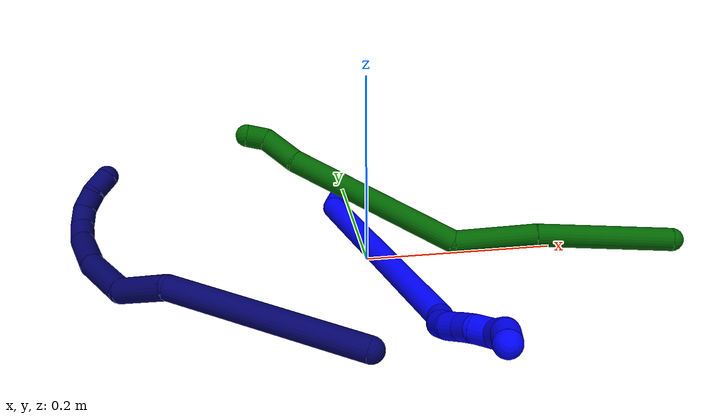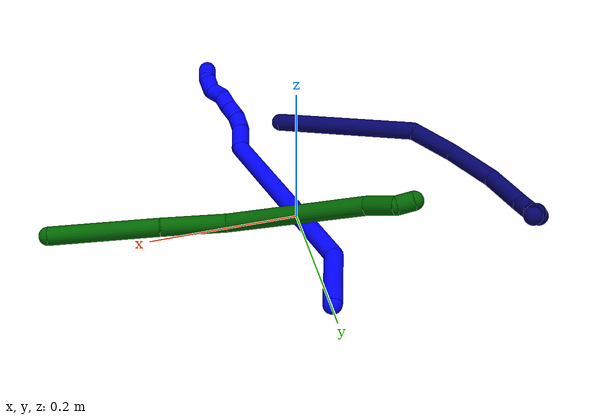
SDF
<sdf version="1.7">
 <world name="default">
  <model name="photoneo_s_sensor">
   <static>1</static>
   <pose>0 0 2 1.57079 1.57079 3.14159</pose>
   <link name="link">
    <inertial><mass>0.1</mass></inertial>
    <sensor name="sensor" type="depth">
     <update_rate>30</update_rate>
     <camera>
      <horizontal_fov>1.22</horizontal_fov>
      <image><width>1920</width><height>1200</height><format>B8G8R8</format></image>
      <clip><near>0.1</near><far>4</far></clip>
      <depth_camera><output>points</output></depth_camera>
     </camera>
     <plugin name="camera_plugin" filename="libgazebo_ros_depth_camera.so">
      <baseline>0.2</baseline>
      <alwaysOn>1</alwaysOn>
      <updateRate>0.0</updateRate>
      <cameraName>camera_ir</cameraName>
      <imageTopicName>/camera/color/image_raw</imageTopicName>
      <cameraInfoTopicName>/camera/color/camera_info</cameraInfoTopicName>
      <depthImageTopicName>/camera/depth/image_raw</depthImageTopicName>
      <depthImageCameraInfoTopicName>/camera/depth/camera_info</depthImageCameraInfoTopicName>
      <pointCloudTopicName>/camera/depth/points</pointCloudTopicName>
      <frameName>fr_optical</frameName>
      <pointCloudCutoff>0.1</pointCloudCutoff>
      <pointCloudCutoffMax>2.0</pointCloudCutoffMax>
      <distortionK1>0</distortionK1>
      <distortionK2>0</distortionK2>
      <distortionK3>0</distortionK3>
      <distortionT1>0</distortionT1>
      <distortionT2>0</distortionT2>
      <CxPrime>0</CxPrime>
      <Cx>0</Cx>
      <Cy>0</Cy>
      <focalLength>0</focalLength>
      <hackBaseline>0</hackBaseline>
     </plugin>
    </sensor>
   </link>
  </model>
  <model name="bin">
   <static>1</static>
   <link name="bottom">
    <collision name="collision-bottom">
     <pose>0 0 -0.01 0 -0 0</pose>
     <geometry><box><size>0.8 0.6 0.02</size></box></geometry>
     <surface>
      <friction><ode><mu>100</mu><mu2>100</mu2></ode></friction>
      <contact><collide_bitmask>65535</collide_bitmask></contact>
     </surface>
    </collision>
   </link>
   <link name="west_wall">
    <collision name="collision-west_wall">
     <pose>-0.41 0 0.1 0 -0 0</pose>
     <geometry><box><size>0.02 0.6 0.2</size></box></geometry>
     <surface>
      <friction><ode><mu>100</mu><mu2>100</mu2></ode></friction>
      <contact><collide_bitmask>65535</collide_bitmask></contact>
     </surface>
    </collision>
   </link>
   <link name="east_wall">
    <collision name="collision-east_wall">
     <pose>0.41 0 0.1 0 -0 0</pose>
     <geometry><box><size>0.02 0.6 0.2</size></box></geometry>
     <surface>
      <friction><ode><mu>100</mu><mu2>100</mu2></ode></friction>
      <contact><collide_bitmask>65535</collide_bitmask></contact>
     </surface>
    </collision>
   </link>
   <link name="south_wall">
    <collision name="collision-south_wall">
     <pose>0 -0.31 0.1 0 -0 0</pose>
     <geometry><box><size>0.8 0.02 0.2</size></box></geometry>
     <surface>
      <friction><ode><mu>100</mu><mu2>100</mu2></ode></friction>
      <contact><collide_bitmask>65535</collide_bitmask></contact>
     </surface>
    </collision>
   </link>
   <link name="north_wall">
    <collision name="collision-north_wall">
     <pose>0 0.31 0.1 0 -0 0</pose>
     <geometry><box><size>0.8 0.02 0.2</size></box></geometry>
     <surface>
      <friction><ode><mu>100</mu><mu2>100</mu2></ode></friction>
      <contact><collide_bitmask>65535</collide_bitmask></contact>
     </surface>
    </collision>
   </link>
  </model>
  <model name="1">
   <static>0</static>
   <link name="1">
    <collision name="collision-cylinder-e_1_1_4">
     <pose>-0.011676 -0.016722 0.034514 0.451163 -0.295531 -0.068292</pose>
     <geometry><cylinder><radius>0.0125</radius><length>0.080178</length></cylinder></geometry>
     <surface>
      <friction><ode><mu>1.16</mu><mu2>1.16</mu2><slip1>0</slip1><slip2>0</slip2></ode></friction>
      <contact><ode><kp>1e+06</kp><kd>1</kd><max_vel>0</max_vel><min_depth>0.001</min_depth></ode></contact>
     </surface>
    </collision>
    <visual name="visual-cylinder-e_1_1_4">
     <pose>-0.011676 -0.016722 0.034514 0.451163 -0.295531 -0.068292</pose>
     <geometry><cylinder><radius>0.0125</radius><length>0.080178</length></cylinder></geometry>
     <material><ambient>0 0 1 1</ambient></material>
    </visual>
    <collision name="collision-cylinder-e_2_4_5">
     <pose>0.001085 -0.121821 0.164183 0.748489 0.185995 0.073229</pose>
     <geometry><cylinder><radius>0.0125</radius><length>0.26429</length></cylinder></geometry>
     <surface>
      <friction><ode><mu>1.16</mu><mu2>1.16</mu2><slip1>0</slip1><slip2>0</slip2></ode></friction>
      <contact><ode><kp>1e+06</kp><kd>1</kd><max_vel>0</max_vel><min_depth>0.001</min_depth></ode></contact>
     </surface>
    </collision>
    <visual name="visual-cylinder-e_2_4_5">
     <pose>0.001085 -0.121821 0.164183 0.748489 0.185995 0.073229</pose>
     <geometry><cylinder><radius>0.0125</radius><length>0.26429</length></cylinder></geometry>
     <material><ambient>0 0 1 1</ambient></material>
    </visual>
    <collision name="collision-cylinder-e_3_5_6">
     <pose>0.023386 -0.213946 0.275475 0.228146 -0.1282 -0.014708</pose>
     <geometry><cylinder><radius>0.0125</radius><length>0.033408</length></cylinder></geometry>
     <surface>
      <friction><ode><mu>1.16</mu><mu2>1.16</mu2><slip1>0</slip1><slip2>0</slip2></ode></friction>
      <contact><ode><kp>1e+06</kp><kd>1</kd><max_vel>0</max_vel><min_depth>0.001</min_depth></ode></contact>
     </surface>
    </collision>
    <visual name="visual-cylinder-e_3_5_6">
     <pose>0.023386 -0.213946 0.275475 0.228146 -0.1282 -0.014708</pose>
     <geometry><cylinder><radius>0.0125</radius><length>0.033408</length></cylinder></geometry>
     <material><ambient>0 0 1 1</ambient></material>
    </visual>
    <collision name="collision-cylinder-e_4_6_7">
     <pose>0.023343 -0.220634 0.301858 0.279517 0.193792 0.027346</pose>
     <geometry><cylinder><radius>0.0125</radius><length>0.021724</length></cylinder></geometry>
     <surface>
      <friction><ode><mu>1.16</mu><mu2>1.16</mu2><slip1>0</slip1><slip2>0</slip2></ode></friction>
      <contact><ode><kp>1e+06</kp><kd>1</kd><max_vel>0</max_vel><min_depth>0.001</min_depth></ode></contact>
     </surface>
    </collision>
    <visual name="visual-cylinder-e_4_6_7">
     <pose>0.023343 -0.220634 0.301858 0.279517 0.193792 0.027346</pose>
     <geometry><cylinder><radius>0.0125</radius><length>0.021724</length></cylinder></geometry>
     <material><ambient>0 0 1 1</ambient></material>
    </visual>
    <collision name="collision-cylinder-e_5_7_8">
     <pose>0.030269 -0.226941 0.320324 0.388608 0.498338 0.100064</pose>
     <geometry><cylinder><radius>0.0125</radius><length>0.020229</length></cylinder></geometry>
     <surface>
      <friction><ode><mu>1.16</mu><mu2>1.16</mu2><slip1>0</slip1><slip2>0</slip2></ode></friction>
      <contact><ode><kp>1e+06</kp><kd>1</kd><max_vel>0</max_vel><min_depth>0.001</min_depth></ode></contact>
     </surface>
    </collision>
    <visual name="visual-cylinder-e_5_7_8">
     <pose>0.030269 -0.226941 0.320324 0.388608 0.498338 0.100064</pose>
     <geometry><cylinder><radius>0.0125</radius><length>0.020229</length></cylinder></geometry>
     <material><ambient>0 0 1 1</ambient></material>
    </visual>
    <collision name="collision-cylinder-e_6_8_9">
     <pose>0.038884 -0.233422 0.337299 0.341865 0.386482 0.067531</pose>
     <geometry><cylinder><radius>0.0125</radius><length>0.020061</length></cylinder></geometry>
     <surface>
      <friction><ode><mu>1.16</mu><mu2>1.16</mu2><slip1>0</slip1><slip2>0</slip2></ode></friction>
      <contact><ode><kp>1e+06</kp><kd>1</kd><max_vel>0</max_vel><min_depth>0.001</min_depth></ode></contact>
     </surface>
    </collision>
    <visual name="visual-cylinder-e_6_8_9">
     <pose>0.038884 -0.233422 0.337299 0.341865 0.386482 0.067531</pose>
     <geometry><cylinder><radius>0.0125</radius><length>0.020061</length></cylinder></geometry>
     <material><ambient>0 0 1 1</ambient></material>
    </visual>
    <collision name="collision-cylinder-e_7_9_10">
     <pose>0.048754 -0.242032 0.351811 0.761997 0.652996 0.269634</pose>
     <geometry><cylinder><radius>0.0125</radius><length>0.020044</length></cylinder></geometry>
     <surface>
      <friction><ode><mu>1.16</mu><mu2>1.16</mu2><slip1>0</slip1><slip2>0</slip2></ode></friction>
      <contact><ode><kp>1e+06</kp><kd>1</kd><max_vel>0</max_vel><min_depth>0.001</min_depth></ode></contact>
     </surface>
    </collision>
    <visual name="visual-cylinder-e_7_9_10">
     <pose>0.048754 -0.242032 0.351811 0.761997 0.652996 0.269634</pose>
     <geometry><cylinder><radius>0.0125</radius><length>0.020044</length></cylinder></geometry>
     <material><ambient>0 0 1 1</ambient></material>
    </visual>
    <collision name="collision-cylinder-e_8_10_11">
     <pose>0.057897 -0.248797 0.36704 0.133351 0.309435 0.020828</pose>
     <geometry><cylinder><radius>0.0125</radius><length>0.020063</length></cylinder></geometry>
     <surface>
      <friction><ode><mu>1.16</mu><mu2>1.16</mu2><slip1>0</slip1><slip2>0</slip2></ode></friction>
      <contact><ode><kp>1e+06</kp><kd>1</kd><max_vel>0</max_vel><min_depth>0.001</min_depth></ode></contact>
     </surface>
    </collision>
    <visual name="visual-cylinder-e_8_10_11">
     <pose>0.057897 -0.248797 0.36704 0.133351 0.309435 0.020828</pose>
     <geometry><cylinder><radius>0.0125</radius><length>0.020063</length></cylinder></geometry>
     <material><ambient>0 0 1 1</ambient></material>
    </visual>
    <collision name="collision-cylinder-e_9_11_2">
     <pose>0.058992 -0.254464 0.385278 0.464806 -0.197311 -0.046843</pose>
     <geometry><cylinder><radius>0.0125</radius><length>0.020003</length></cylinder></geometry>
     <surface>
      <friction><ode><mu>1.16</mu><mu2>1.16</mu2><slip1>0</slip1><slip2>0</slip2></ode></friction>
      <contact><ode><kp>1e+06</kp><kd>1</kd><max_vel>0</max_vel><min_depth>0.001</min_depth></ode></contact>
     </surface>
    </collision>
    <visual name="visual-cylinder-e_9_11_2">
     <pose>0.058992 -0.254464 0.385278 0.464806 -0.197311 -0.046843</pose>
     <geometry><cylinder><radius>0.0125</radius><length>0.020003</length></cylinder></geometry>
     <material><ambient>0 0 1 1</ambient></material>
    </visual>
    <collision name="collision-sphere-2">
     <pose>0.057031 -0.25886 0.394045 0 -0 0</pose>
     <geometry><sphere><radius>0.0125</radius></sphere></geometry>
     <surface>
      <friction><ode><mu>1.16</mu><mu2>1.16</mu2><slip1>0</slip1><slip2>0</slip2></ode></friction>
      <contact><ode><kp>1e+06</kp><kd>1</kd><max_vel>0</max_vel><min_depth>0.001</min_depth></ode></contact>
     </surface>
    </collision>
    <visual name="visual-sphere-2">
     <pose>0.057031 -0.25886 0.394045 0 -0 0</pose>
     <geometry><sphere><radius>0.0125</radius></sphere></geometry>
     <material><ambient>0 0 1 1</ambient></material>
    </visual>
    <collision name="collision-sphere-11">
     <pose>0.060952 -0.250068 0.376511 0 -0 0</pose>
     <geometry><sphere><radius>0.0125</radius></sphere></geometry>
     <surface>
      <friction><ode><mu>1.16</mu><mu2>1.16</mu2><slip1>0</slip1><slip2>0</slip2></ode></friction>
      <contact><ode><kp>1e+06</kp><kd>1</kd><max_vel>0</max_vel><min_depth>0.001</min_depth></ode></contact>
     </surface>
    </collision>
    <visual name="visual-sphere-11">
     <pose>0.060952 -0.250068 0.376511 0 -0 0</pose>
     <geometry><sphere><radius>0.0125</radius></sphere></geometry>
     <material><ambient>0 0 1 1</ambient></material>
    </visual>
    <collision name="collision-sphere-10">
     <pose>0.054843 -0.247527 0.35757 0 -0 0</pose>
     <geometry><sphere><radius>0.0125</radius></sphere></geometry>
     <surface>
      <friction><ode><mu>1.16</mu><mu2>1.16</mu2><slip1>0</slip1><slip2>0</slip2></ode></friction>
      <contact><ode><kp>1e+06</kp><kd>1</kd><max_vel>0</max_vel><min_depth>0.001</min_depth></ode></contact>
     </surface>
    </collision>
    <visual name="visual-sphere-10">
     <pose>0.054843 -0.247527 0.35757 0 -0 0</pose>
     <geometry><sphere><radius>0.0125</radius></sphere></geometry>
     <material><ambient>0 0 1 1</ambient></material>
    </visual>
    <collision name="collision-sphere-9">
     <pose>0.042665 -0.236536 0.346052 0 -0 0</pose>
     <geometry><sphere><radius>0.0125</radius></sphere></geometry>
     <surface>
      <friction><ode><mu>1.16</mu><mu2>1.16</mu2><slip1>0</slip1><slip2>0</slip2></ode></friction>
      <contact><ode><kp>1e+06</kp><kd>1</kd><max_vel>0</max_vel><min_depth>0.001</min_depth></ode></contact>
     </surface>
    </collision>
    <visual name="visual-sphere-9">
     <pose>0.042665 -0.236536 0.346052 0 -0 0</pose>
     <geometry><sphere><radius>0.0125</radius></sphere></geometry>
     <material><ambient>0 0 1 1</ambient></material>
    </visual>
    <collision name="collision-sphere-4">
     <pose>-0.023352 -0.033443 0.069028 0 -0 0</pose>
     <geometry><sphere><radius>0.0125</radius></sphere></geometry>
     <surface>
      <friction><ode><mu>1.16</mu><mu2>1.16</mu2><slip1>0</slip1><slip2>0</slip2></ode></friction>
      <contact><ode><kp>1e+06</kp><kd>1</kd><max_vel>0</max_vel><min_depth>0.001</min_depth></ode></contact>
     </surface>
    </collision>
    <visual name="visual-sphere-4">
     <pose>-0.023352 -0.033443 0.069028 0 -0 0</pose>
     <geometry><sphere><radius>0.0125</radius></sphere></geometry>
     <material><ambient>0 0 1 1</ambient></material>
    </visual>
    <collision name="collision-sphere-1">
     <geometry><sphere><radius>0.0125</radius></sphere></geometry>
     <surface>
      <friction><ode><mu>1.16</mu><mu2>1.16</mu2><slip1>0</slip1><slip2>0</slip2></ode></friction>
      <contact><ode><kp>1e+06</kp><kd>1</kd><max_vel>0</max_vel><min_depth>0.001</min_depth></ode></contact>
     </surface>
    </collision>
    <visual name="visual-sphere-1">
     <geometry><sphere><radius>0.0125</radius></sphere></geometry>
     <material><ambient>0 0 1 1</ambient></material>
    </visual>
    <collision name="collision-sphere-8">
     <pose>0.035103 -0.230307 0.328546 0 -0 0</pose>
     <geometry><sphere><radius>0.0125</radius></sphere></geometry>
     <surface>
      <friction><ode><mu>1.16</mu><mu2>1.16</mu2><slip1>0</slip1><slip2>0</slip2></ode></friction>
      <contact><ode><kp>1e+06</kp><kd>1</kd><max_vel>0</max_vel><min_depth>0.001</min_depth></ode></contact>
     </surface>
    </collision>
    <visual name="visual-sphere-8">
     <pose>0.035103 -0.230307 0.328546 0 -0 0</pose>
     <geometry><sphere><radius>0.0125</radius></sphere></geometry>
     <material><ambient>0 0 1 1</ambient></material>
    </visual>
    <collision name="collision-sphere-5">
     <pose>0.025522 -0.210199 0.259338 0 -0 0</pose>
     <geometry><sphere><radius>0.0125</radius></sphere></geometry>
     <surface>
      <friction><ode><mu>1.16</mu><mu2>1.16</mu2><slip1>0</slip1><slip2>0</slip2></ode></friction>
      <contact><ode><kp>1e+06</kp><kd>1</kd><max_vel>0</max_vel><min_depth>0.001</min_depth></ode></contact>
     </surface>
    </collision>
    <visual name="visual-sphere-5">
     <pose>0.025522 -0.210199 0.259338 0 -0 0</pose>
     <geometry><sphere><radius>0.0125</radius></sphere></geometry>
     <material><ambient>0 0 1 1</ambient></material>
    </visual>
    <collision name="collision-sphere-6">
     <pose>0.021251 -0.217693 0.291613 0 -0 0</pose>
     <geometry><sphere><radius>0.0125</radius></sphere></geometry>
     <surface>
      <friction><ode><mu>1.16</mu><mu2>1.16</mu2><slip1>0</slip1><slip2>0</slip2></ode></friction>
      <contact><ode><kp>1e+06</kp><kd>1</kd><max_vel>0</max_vel><min_depth>0.001</min_depth></ode></contact>
     </surface>
    </collision>
    <visual name="visual-sphere-6">
     <pose>0.021251 -0.217693 0.291613 0 -0 0</pose>
     <geometry><sphere><radius>0.0125</radius></sphere></geometry>
     <material><ambient>0 0 1 1</ambient></material>
    </visual>
    <collision name="collision-sphere-7">
     <pose>0.025434 -0.223574 0.312103 0 -0 0</pose>
     <geometry><sphere><radius>0.0125</radius></sphere></geometry>
     <surface>
      <friction><ode><mu>1.16</mu><mu2>1.16</mu2><slip1>0</slip1><slip2>0</slip2></ode></friction>
      <contact><ode><kp>1e+06</kp><kd>1</kd><max_vel>0</max_vel><min_depth>0.001</min_depth></ode></contact>
     </surface>
    </collision>
    <visual name="visual-sphere-7">
     <pose>0.025434 -0.223574 0.312103 0 -0 0</pose>
     <geometry><sphere><radius>0.0125</radius></sphere></geometry>
     <material><ambient>0 0 1 1</ambient></material>
    </visual>
    <inertial>
     <pose>0.0107 -0.139367 0.194577 0 -0 0</pose>
     <mass>0.5</mass>
     <inertia>
      <ixx>0.001688</ixx>
      <ixy>0</ixy>
      <ixz>0</ixz>
      <iyy>0.001289</iyy>
      <iyz>0</iyz>
      <izz>0.000815</izz>
     </inertia>
    </inertial>
   </link>
   <pose>0.001053 0.179313 0.012117 0.921515 -0.372205 0.048371</pose>
  </model>
  <model name="6">
   <static>0</static>
   <link name="6">
    <collision name="collision-cylinder-e_1_1_4">
     <pose>-0.070676 0.018493 0.004961 -1.30869 -1.30624 1.0615</pose>
     <geometry><cylinder><radius>0.0125</radius><length>0.146447</length></cylinder></geometry>
     <surface>
      <friction><ode><mu>1.16</mu><mu2>1.16</mu2><slip1>0</slip1><slip2>0</slip2></ode></friction>
      <contact><ode><kp>1e+06</kp><kd>1</kd><max_vel>0</max_vel><min_depth>0.001</min_depth></ode></contact>
     </surface>
    </collision>
    <visual name="visual-cylinder-e_1_1_4">
     <pose>-0.070676 0.018493 0.004961 -1.30869 -1.30624 1.0615</pose>
     <geometry><cylinder><radius>0.0125</radius><length>0.146447</length></cylinder></geometry>
     <material><ambient>0 0.392157 0.003922 1</ambient></material>
    </visual>
    <collision name="collision-cylinder-e_2_4_5">
     <pose>-0.184726 0.047511 0.007552 -1.7923 -1.32701 1.5479</pose>
     <geometry><cylinder><radius>0.0125</radius><length>0.089392</length></cylinder></geometry>
     <surface>
      <friction><ode><mu>1.16</mu><mu2>1.16</mu2><slip1>0</slip1><slip2>0</slip2></ode></friction>
      <contact><ode><kp>1e+06</kp><kd>1</kd><max_vel>0</max_vel><min_depth>0.001</min_depth></ode></contact>
     </surface>
    </collision>
    <visual name="visual-cylinder-e_2_4_5">
     <pose>-0.184726 0.047511 0.007552 -1.7923 -1.32701 1.5479</pose>
     <geometry><cylinder><radius>0.0125</radius><length>0.089392</length></cylinder></geometry>
     <material><ambient>0 0.392157 0.003922 1</ambient></material>
    </visual>
    <collision name="collision-cylinder-e_3_5_6">
     <pose>-0.308594 0.087944 0.05445 -0.545589 -0.949392 0.285583</pose>
     <geometry><cylinder><radius>0.0125</radius><length>0.198001</length></cylinder></geometry>
     <surface>
      <friction><ode><mu>1.16</mu><mu2>1.16</mu2><slip1>0</slip1><slip2>0</slip2></ode></friction>
      <contact><ode><kp>1e+06</kp><kd>1</kd><max_vel>0</max_vel><min_depth>0.001</min_depth></ode></contact>
     </surface>
    </collision>
    <visual name="visual-cylinder-e_3_5_6">
     <pose>-0.308594 0.087944 0.05445 -0.545589 -0.949392 0.285583</pose>
     <geometry><cylinder><radius>0.0125</radius><length>0.198001</length></cylinder></geometry>
     <material><ambient>0 0.392157 0.003922 1</ambient></material>
    </visual>
    <collision name="collision-cylinder-e_4_6_7">
     <pose>-0.403314 0.126991 0.117726 -0.578062 -0.704868 0.217864</pose>
     <geometry><cylinder><radius>0.0125</radius><length>0.043914</length></cylinder></geometry>
     <surface>
      <friction><ode><mu>1.16</mu><mu2>1.16</mu2><slip1>0</slip1><slip2>0</slip2></ode></friction>
      <contact><ode><kp>1e+06</kp><kd>1</kd><max_vel>0</max_vel><min_depth>0.001</min_depth></ode></contact>
     </surface>
    </collision>
    <visual name="visual-cylinder-e_4_6_7">
     <pose>-0.403314 0.126991 0.117726 -0.578062 -0.704868 0.217864</pose>
     <geometry><cylinder><radius>0.0125</radius><length>0.043914</length></cylinder></geometry>
     <material><ambient>0 0.392157 0.003922 1</ambient></material>
    </visual>
    <collision name="collision-cylinder-e_5_7_2">
     <pose>-0.428394 0.137213 0.133913 -0.461349 -1.35011 0.371669</pose>
     <geometry><cylinder><radius>0.0125</radius><length>0.022246</length></cylinder></geometry>
     <surface>
      <friction><ode><mu>1.16</mu><mu2>1.16</mu2><slip1>0</slip1><slip2>0</slip2></ode></friction>
      <contact><ode><kp>1e+06</kp><kd>1</kd><max_vel>0</max_vel><min_depth>0.001</min_depth></ode></contact>
     </surface>
    </collision>
    <visual name="visual-cylinder-e_5_7_2">
     <pose>-0.428394 0.137213 0.133913 -0.461349 -1.35011 0.371669</pose>
     <geometry><cylinder><radius>0.0125</radius><length>0.022246</length></cylinder></geometry>
     <material><ambient>0 0.392157 0.003922 1</ambient></material>
    </visual>
    <collision name="collision-sphere-2">
     <pose>-0.439248 0.138297 0.136094 0 -0 0</pose>
     <geometry><sphere><radius>0.0125</radius></sphere></geometry>
     <surface>
      <friction><ode><mu>1.16</mu><mu2>1.16</mu2><slip1>0</slip1><slip2>0</slip2></ode></friction>
      <contact><ode><kp>1e+06</kp><kd>1</kd><max_vel>0</max_vel><min_depth>0.001</min_depth></ode></contact>
     </surface>
    </collision>
    <visual name="visual-sphere-2">
     <pose>-0.439248 0.138297 0.136094 0 -0 0</pose>
     <geometry><sphere><radius>0.0125</radius></sphere></geometry>
     <material><ambient>0 0.392157 0.003922 1</ambient></material>
    </visual>
    <collision name="collision-sphere-7">
     <pose>-0.417541 0.136129 0.131733 0 -0 0</pose>
     <geometry><sphere><radius>0.0125</radius></sphere></geometry>
     <surface>
      <friction><ode><mu>1.16</mu><mu2>1.16</mu2><slip1>0</slip1><slip2>0</slip2></ode></friction>
      <contact><ode><kp>1e+06</kp><kd>1</kd><max_vel>0</max_vel><min_depth>0.001</min_depth></ode></contact>
     </surface>
    </collision>
    <visual name="visual-sphere-7">
     <pose>-0.417541 0.136129 0.131733 0 -0 0</pose>
     <geometry><sphere><radius>0.0125</radius></sphere></geometry>
     <material><ambient>0 0.392157 0.003922 1</ambient></material>
    </visual>
    <collision name="collision-sphere-6">
     <pose>-0.389088 0.117853 0.103719 0 -0 0</pose>
     <geometry><sphere><radius>0.0125</radius></sphere></geometry>
     <surface>
      <friction><ode><mu>1.16</mu><mu2>1.16</mu2><slip1>0</slip1><slip2>0</slip2></ode></friction>
      <contact><ode><kp>1e+06</kp><kd>1</kd><max_vel>0</max_vel><min_depth>0.001</min_depth></ode></contact>
     </surface>
    </collision>
    <visual name="visual-sphere-6">
     <pose>-0.389088 0.117853 0.103719 0 -0 0</pose>
     <geometry><sphere><radius>0.0125</radius></sphere></geometry>
     <material><ambient>0 0.392157 0.003922 1</ambient></material>
    </visual>
    <collision name="collision-sphere-5">
     <pose>-0.228101 0.058036 0.005182 0 -0 0</pose>
     <geometry><sphere><radius>0.0125</radius></sphere></geometry>
     <surface>
      <friction><ode><mu>1.16</mu><mu2>1.16</mu2><slip1>0</slip1><slip2>0</slip2></ode></friction>
      <contact><ode><kp>1e+06</kp><kd>1</kd><max_vel>0</max_vel><min_depth>0.001</min_depth></ode></contact>
     </surface>
    </collision>
    <visual name="visual-sphere-5">
     <pose>-0.228101 0.058036 0.005182 0 -0 0</pose>
     <geometry><sphere><radius>0.0125</radius></sphere></geometry>
     <material><ambient>0 0.392157 0.003922 1</ambient></material>
    </visual>
    <collision name="collision-sphere-1">
     <geometry><sphere><radius>0.0125</radius></sphere></geometry>
     <surface>
      <friction><ode><mu>1.16</mu><mu2>1.16</mu2><slip1>0</slip1><slip2>0</slip2></ode></friction>
      <contact><ode><kp>1e+06</kp><kd>1</kd><max_vel>0</max_vel><min_depth>0.001</min_depth></ode></contact>
     </surface>
    </collision>
    <visual name="visual-sphere-1">
     <geometry><sphere><radius>0.0125</radius></sphere></geometry>
     <material><ambient>0 0.392157 0.003922 1</ambient></material>
    </visual>
    <collision name="collision-sphere-4">
     <pose>-0.141352 0.036985 0.009922 0 -0 0</pose>
     <geometry><sphere><radius>0.0125</radius></sphere></geometry>
     <surface>
      <friction><ode><mu>1.16</mu><mu2>1.16</mu2><slip1>0</slip1><slip2>0</slip2></ode></friction>
      <contact><ode><kp>1e+06</kp><kd>1</kd><max_vel>0</max_vel><min_depth>0.001</min_depth></ode></contact>
     </surface>
    </collision>
    <visual name="visual-sphere-4">
     <pose>-0.141352 0.036985 0.009922 0 -0 0</pose>
     <geometry><sphere><radius>0.0125</radius></sphere></geometry>
     <material><ambient>0 0.392157 0.003922 1</ambient></material>
    </visual>
    <inertial>
     <pose>-0.230413 0.065995 0.040663 0 -0 0</pose>
     <mass>0.5</mass>
     <inertia>
      <ixx>0.000558</ixx>
      <ixy>0</ixy>
      <ixz>0</ixz>
      <iyy>0.001131</iyy>
      <iyz>0</iyz>
      <izz>0.000586</izz>
     </inertia>
    </inertial>
   </link>
   <pose>0.328833 -0.030456 0.012484 -0.543379 0.107336 0.085382</pose>
  </model>
  <model name="7">
   <static>0</static>
   <link name="7">
    <collision name="collision-cylinder-e_1_1_4">
     <pose>-0.049555 0.016485 0.086604 -0.188096 -0.512093 0.049378</pose>
     <geometry><cylinder><radius>0.0125</radius><length>0.202265</length></cylinder></geometry>
     <surface>
      <friction><ode><mu>1.16</mu><mu2>1.16</mu2><slip1>0</slip1><slip2>0</slip2></ode></friction>
      <contact><ode><kp>1e+06</kp><kd>1</kd><max_vel>0</max_vel><min_depth>0.001</min_depth></ode></contact>
     </surface>
    </collision>
    <visual name="visual-cylinder-e_1_1_4">
     <pose>-0.049555 0.016485 0.086604 -0.188096 -0.512093 0.049378</pose>
     <geometry><cylinder><radius>0.0125</radius><length>0.202265</length></cylinder></geometry>
     <material><ambient>0.003922 0 0.403922 1</ambient></material>
    </visual>
    <collision name="collision-cylinder-e_2_4_5">
     <pose>-0.125125 0.037618 0.190559 -0.261747 -0.966493 0.137921</pose>
     <geometry><cylinder><radius>0.0125</radius><length>0.063226</length></cylinder></geometry>
     <surface>
      <friction><ode><mu>1.16</mu><mu2>1.16</mu2><slip1>0</slip1><slip2>0</slip2></ode></friction>
      <contact><ode><kp>1e+06</kp><kd>1</kd><max_vel>0</max_vel><min_depth>0.001</min_depth></ode></contact>
     </surface>
    </collision>
    <visual name="visual-cylinder-e_2_4_5">
     <pose>-0.125125 0.037618 0.190559 -0.261747 -0.966493 0.137921</pose>
     <geometry><cylinder><radius>0.0125</radius><length>0.063226</length></cylinder></geometry>
     <material><ambient>0.003922 0 0.403922 1</ambient></material>
    </visual>
    <collision name="collision-cylinder-e_3_5_6">
     <pose>-0.174846 0.064646 0.226283 -0.883412 -0.686047 0.334604</pose>
     <geometry><cylinder><radius>0.0125</radius><length>0.074847</length></cylinder></geometry>
     <surface>
      <friction><ode><mu>1.16</mu><mu2>1.16</mu2><slip1>0</slip1><slip2>0</slip2></ode></friction>
      <contact><ode><kp>1e+06</kp><kd>1</kd><max_vel>0</max_vel><min_depth>0.001</min_depth></ode></contact>
     </surface>
    </collision>
    <visual name="visual-cylinder-e_3_5_6">
     <pose>-0.174846 0.064646 0.226283 -0.883412 -0.686047 0.334604</pose>
     <geometry><cylinder><radius>0.0125</radius><length>0.074847</length></cylinder></geometry>
     <material><ambient>0.003922 0 0.403922 1</ambient></material>
    </visual>
    <collision name="collision-cylinder-e_4_6_7">
     <pose>-0.216182 0.109976 0.255957 -1.11321 -0.603416 0.382553</pose>
     <geometry><cylinder><radius>0.0125</radius><length>0.062133</length></cylinder></geometry>
     <surface>
      <friction><ode><mu>1.16</mu><mu2>1.16</mu2><slip1>0</slip1><slip2>0</slip2></ode></friction>
      <contact><ode><kp>1e+06</kp><kd>1</kd><max_vel>0</max_vel><min_depth>0.001</min_depth></ode></contact>
     </surface>
    </collision>
    <visual name="visual-cylinder-e_4_6_7">
     <pose>-0.216182 0.109976 0.255957 -1.11321 -0.603416 0.382553</pose>
     <geometry><cylinder><radius>0.0125</radius><length>0.062133</length></cylinder></geometry>
     <material><ambient>0.003922 0 0.403922 1</ambient></material>
    </visual>
    <collision name="collision-cylinder-e_5_7_8">
     <pose>-0.238283 0.144648 0.271825 -1.19935 -0.341527 0.234702</pose>
     <geometry><cylinder><radius>0.0125</radius><length>0.026706</length></cylinder></geometry>
     <surface>
      <friction><ode><mu>1.16</mu><mu2>1.16</mu2><slip1>0</slip1><slip2>0</slip2></ode></friction>
      <contact><ode><kp>1e+06</kp><kd>1</kd><max_vel>0</max_vel><min_depth>0.001</min_depth></ode></contact>
     </surface>
    </collision>
    <visual name="visual-cylinder-e_5_7_8">
     <pose>-0.238283 0.144648 0.271825 -1.19935 -0.341527 0.234702</pose>
     <geometry><cylinder><radius>0.0125</radius><length>0.026706</length></cylinder></geometry>
     <material><ambient>0.003922 0 0.403922 1</ambient></material>
    </visual>
    <collision name="collision-cylinder-e_6_8_9">
     <pose>-0.243137 0.167993 0.280338 -1.24347 -0.031117 0.022297</pose>
     <geometry><cylinder><radius>0.0125</radius><length>0.024559</length></cylinder></geometry>
     <surface>
      <friction><ode><mu>1.16</mu><mu2>1.16</mu2><slip1>0</slip1><slip2>0</slip2></ode></friction>
      <contact><ode><kp>1e+06</kp><kd>1</kd><max_vel>0</max_vel><min_depth>0.001</min_depth></ode></contact>
     </surface>
    </collision>
    <visual name="visual-cylinder-e_6_8_9">
     <pose>-0.243137 0.167993 0.280338 -1.24347 -0.031117 0.022297</pose>
     <geometry><cylinder><radius>0.0125</radius><length>0.024559</length></cylinder></geometry>
     <material><ambient>0.003922 0 0.403922 1</ambient></material>
    </visual>
    <collision name="collision-cylinder-e_7_9_10">
     <pose>-0.237033 0.188711 0.284734 -1.52137 0.618874 -0.590765</pose>
     <geometry><cylinder><radius>0.0125</radius><length>0.022362</length></cylinder></geometry>
     <surface>
      <friction><ode><mu>1.16</mu><mu2>1.16</mu2><slip1>0</slip1><slip2>0</slip2></ode></friction>
      <contact><ode><kp>1e+06</kp><kd>1</kd><max_vel>0</max_vel><min_depth>0.001</min_depth></ode></contact>
     </surface>
    </collision>
    <visual name="visual-cylinder-e_7_9_10">
     <pose>-0.237033 0.188711 0.284734 -1.52137 0.618874 -0.590765</pose>
     <geometry><cylinder><radius>0.0125</radius><length>0.022362</length></cylinder></geometry>
     <material><ambient>0.003922 0 0.403922 1</ambient></material>
    </visual>
    <collision name="collision-cylinder-e_8_10_2">
     <pose>-0.22714 0.209099 0.283253 -1.74015 0.289067 -0.341733</pose>
     <geometry><cylinder><radius>0.0125</radius><length>0.023903</length></cylinder></geometry>
     <surface>
      <friction><ode><mu>1.16</mu><mu2>1.16</mu2><slip1>0</slip1><slip2>0</slip2></ode></friction>
      <contact><ode><kp>1e+06</kp><kd>1</kd><max_vel>0</max_vel><min_depth>0.001</min_depth></ode></contact>
     </surface>
    </collision>
    <visual name="visual-cylinder-e_8_10_2">
     <pose>-0.22714 0.209099 0.283253 -1.74015 0.289067 -0.341733</pose>
     <geometry><cylinder><radius>0.0125</radius><length>0.023903</length></cylinder></geometry>
     <material><ambient>0.003922 0 0.403922 1</ambient></material>
    </visual>
    <collision name="collision-sphere-2">
     <pose>-0.223733 0.220391 0.281322 0 -0 0</pose>
     <geometry><sphere><radius>0.0125</radius></sphere></geometry>
     <surface>
      <friction><ode><mu>1.16</mu><mu2>1.16</mu2><slip1>0</slip1><slip2>0</slip2></ode></friction>
      <contact><ode><kp>1e+06</kp><kd>1</kd><max_vel>0</max_vel><min_depth>0.001</min_depth></ode></contact>
     </surface>
    </collision>
    <visual name="visual-sphere-2">
     <pose>-0.223733 0.220391 0.281322 0 -0 0</pose>
     <geometry><sphere><radius>0.0125</radius></sphere></geometry>
     <material><ambient>0.003922 0 0.403922 1</ambient></material>
    </visual>
    <collision name="collision-sphere-10">
     <pose>-0.230547 0.197807 0.285184 0 -0 0</pose>
     <geometry><sphere><radius>0.0125</radius></sphere></geometry>
     <surface>
      <friction><ode><mu>1.16</mu><mu2>1.16</mu2><slip1>0</slip1><slip2>0</slip2></ode></friction>
      <contact><ode><kp>1e+06</kp><kd>1</kd><max_vel>0</max_vel><min_depth>0.001</min_depth></ode></contact>
     </surface>
    </collision>
    <visual name="visual-sphere-10">
     <pose>-0.230547 0.197807 0.285184 0 -0 0</pose>
     <geometry><sphere><radius>0.0125</radius></sphere></geometry>
     <material><ambient>0.003922 0 0.403922 1</ambient></material>
    </visual>
    <collision name="collision-sphere-9">
     <pose>-0.24352 0.179615 0.284284 0 -0 0</pose>
     <geometry><sphere><radius>0.0125</radius></sphere></geometry>
     <surface>
      <friction><ode><mu>1.16</mu><mu2>1.16</mu2><slip1>0</slip1><slip2>0</slip2></ode></friction>
      <contact><ode><kp>1e+06</kp><kd>1</kd><max_vel>0</max_vel><min_depth>0.001</min_depth></ode></contact>
     </surface>
    </collision>
    <visual name="visual-sphere-9">
     <pose>-0.24352 0.179615 0.284284 0 -0 0</pose>
     <geometry><sphere><radius>0.0125</radius></sphere></geometry>
     <material><ambient>0.003922 0 0.403922 1</ambient></material>
    </visual>
    <collision name="collision-sphere-4">
     <pose>-0.099111 0.03297 0.173209 0 -0 0</pose>
     <geometry><sphere><radius>0.0125</radius></sphere></geometry>
     <surface>
      <friction><ode><mu>1.16</mu><mu2>1.16</mu2><slip1>0</slip1><slip2>0</slip2></ode></friction>
      <contact><ode><kp>1e+06</kp><kd>1</kd><max_vel>0</max_vel><min_depth>0.001</min_depth></ode></contact>
     </surface>
    </collision>
    <visual name="visual-sphere-4">
     <pose>-0.099111 0.03297 0.173209 0 -0 0</pose>
     <geometry><sphere><radius>0.0125</radius></sphere></geometry>
     <material><ambient>0.003922 0 0.403922 1</ambient></material>
    </visual>
    <collision name="collision-sphere-1">
     <geometry><sphere><radius>0.0125</radius></sphere></geometry>
     <surface>
      <friction><ode><mu>1.16</mu><mu2>1.16</mu2><slip1>0</slip1><slip2>0</slip2></ode></friction>
      <contact><ode><kp>1e+06</kp><kd>1</kd><max_vel>0</max_vel><min_depth>0.001</min_depth></ode></contact>
     </surface>
    </collision>
    <visual name="visual-sphere-1">
     <geometry><sphere><radius>0.0125</radius></sphere></geometry>
     <material><ambient>0.003922 0 0.403922 1</ambient></material>
    </visual>
    <collision name="collision-sphere-8">
     <pose>-0.242755 0.156371 0.276392 0 -0 0</pose>
     <geometry><sphere><radius>0.0125</radius></sphere></geometry>
     <surface>
      <friction><ode><mu>1.16</mu><mu2>1.16</mu2><slip1>0</slip1><slip2>0</slip2></ode></friction>
      <contact><ode><kp>1e+06</kp><kd>1</kd><max_vel>0</max_vel><min_depth>0.001</min_depth></ode></contact>
     </surface>
    </collision>
    <visual name="visual-sphere-8">
     <pose>-0.242755 0.156371 0.276392 0 -0 0</pose>
     <geometry><sphere><radius>0.0125</radius></sphere></geometry>
     <material><ambient>0.003922 0 0.403922 1</ambient></material>
    </visual>
    <collision name="collision-sphere-5">
     <pose>-0.151139 0.042266 0.20791 0 -0 0</pose>
     <geometry><sphere><radius>0.0125</radius></sphere></geometry>
     <surface>
      <friction><ode><mu>1.16</mu><mu2>1.16</mu2><slip1>0</slip1><slip2>0</slip2></ode></friction>
      <contact><ode><kp>1e+06</kp><kd>1</kd><max_vel>0</max_vel><min_depth>0.001</min_depth></ode></contact>
     </surface>
    </collision>
    <visual name="visual-sphere-5">
     <pose>-0.151139 0.042266 0.20791 0 -0 0</pose>
     <geometry><sphere><radius>0.0125</radius></sphere></geometry>
     <material><ambient>0.003922 0 0.403922 1</ambient></material>
    </visual>
    <collision name="collision-sphere-6">
     <pose>-0.198553 0.087027 0.244657 0 -0 0</pose>
     <geometry><sphere><radius>0.0125</radius></sphere></geometry>
     <surface>
      <friction><ode><mu>1.16</mu><mu2>1.16</mu2><slip1>0</slip1><slip2>0</slip2></ode></friction>
      <contact><ode><kp>1e+06</kp><kd>1</kd><max_vel>0</max_vel><min_depth>0.001</min_depth></ode></contact>
     </surface>
    </collision>
    <visual name="visual-sphere-6">
     <pose>-0.198553 0.087027 0.244657 0 -0 0</pose>
     <geometry><sphere><radius>0.0125</radius></sphere></geometry>
     <material><ambient>0.003922 0 0.403922 1</ambient></material>
    </visual>
    <collision name="collision-sphere-7">
     <pose>-0.233811 0.132924 0.267258 0 -0 0</pose>
     <geometry><sphere><radius>0.0125</radius></sphere></geometry>
     <surface>
      <friction><ode><mu>1.16</mu><mu2>1.16</mu2><slip1>0</slip1><slip2>0</slip2></ode></friction>
      <contact><ode><kp>1e+06</kp><kd>1</kd><max_vel>0</max_vel><min_depth>0.001</min_depth></ode></contact>
     </surface>
    </collision>
    <visual name="visual-sphere-7">
     <pose>-0.233811 0.132924 0.267258 0 -0 0</pose>
     <geometry><sphere><radius>0.0125</radius></sphere></geometry>
     <material><ambient>0.003922 0 0.403922 1</ambient></material>
    </visual>
    <inertial>
     <pose>-0.135035 0.069182 0.179374 0 -0 0</pose>
     <mass>0.5</mass>
     <inertia>
      <ixx>0.000703</ixx>
      <ixy>0</ixy>
      <ixz>0</ixz>
      <iyy>0.00082</iyy>
      <iyz>0</iyz>
      <izz>0.000255</izz>
     </inertia>
    </inertial>
   </link>
   <pose>-0.026695 -0.199324 0.011503 0.59571 -0.899188 -0.874247</pose>
  </model>
 </world>
</sdf>
